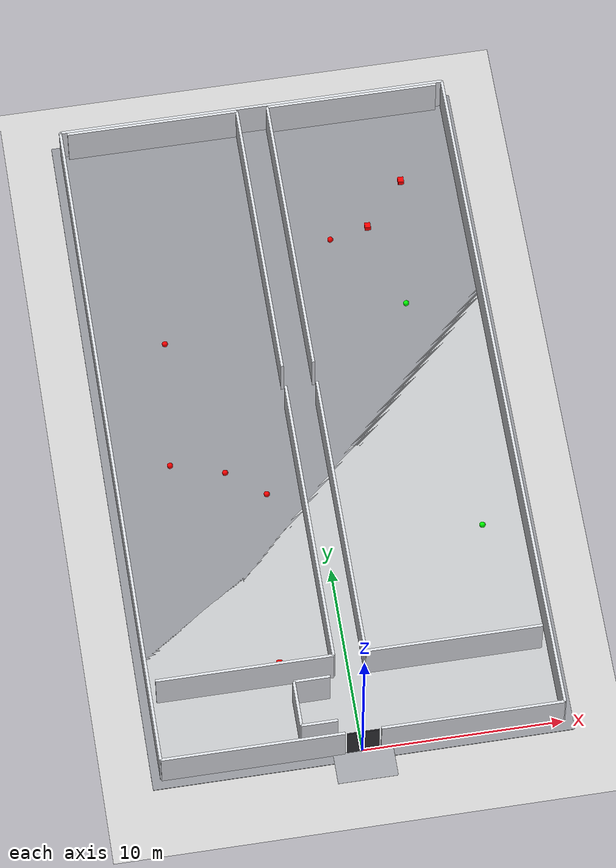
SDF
<?xml version="1.0" ?>
<sdf version="1.7">

  <world name="generated_lightweight_world">

    <include>

      <uri>model://sun</uri>

    </include>

    <include>

      <uri>model://ground_plane</uri>

    </include>

    <model name="generated_lightweight_building">

      <static>true</static>

      <pose>0 0 0 0 0 0</pose>

      <link name="lightweight_foundation">

        <pose>0.0000 18.0000 -0.0900 0.0000 0.0000 0.0000</pose>

        <gravity>false</gravity>

        <collision name="lightweight_foundation_collision">

          <geometry>

            <box>

              <size>21.0000 37.0000 0.1800</size>

            </box>

          </geometry>

        </collision>

        <visual name="lightweight_foundation_visual">

          <geometry>

            <box>

              <size>21.0000 37.0000 0.1800</size>

            </box>

          </geometry>

          <material>

            <ambient>0.56 0.57 0.59 1</ambient>

            <diffuse>0.56 0.57 0.59 1</diffuse>

          </material>

        </visual>

      </link>

      <link name="lightweight_entrance_apron">

        <pose>0.0000 -0.8000 0.0300 0.0000 0.0000 0.0000</pose>

        <gravity>false</gravity>

        <collision name="lightweight_entrance_apron_collision">

          <geometry>

            <box>

              <size>3.0000 1.6000 0.0100</size>

            </box>

          </geometry>

        </collision>

        <visual name="lightweight_entrance_apron_visual">

          <geometry>

            <box>

              <size>3.0000 1.6000 0.0100</size>

            </box>

          </geometry>

          <material>

            <ambient>0.62 0.63 0.65 1</ambient>

            <diffuse>0.62 0.63 0.65 1</diffuse>

          </material>

        </visual>

      </link>

      <link name="lightweight_floor_plate_0">

        <pose>0.0000 18.0000 -0.0900 0.0000 0.0000 0.0000</pose>

        <gravity>false</gravity>

        <collision name="lightweight_floor_plate_0_collision">

          <geometry>

            <box>

              <size>20.0000 36.0000 0.1800</size>

            </box>

          </geometry>

        </collision>

        <visual name="lightweight_floor_plate_0_visual">

          <geometry>

            <box>

              <size>20.0000 36.0000 0.1800</size>

            </box>

          </geometry>

          <material>

            <ambient>0.75 0.76 0.77 1</ambient>

            <diffuse>0.75 0.76 0.77 1</diffuse>

          </material>

        </visual>

      </link>

      <link name="lightweight_west_wall_0">

        <pose>-10.0000 18.0000 1.1750 0.0000 0.0000 0.0000</pose>

        <gravity>false</gravity>

        <collision name="lightweight_west_wall_0_collision">

          <geometry>

            <box>

              <size>0.1400 36.0000 2.3500</size>

            </box>

          </geometry>

        </collision>

        <visual name="lightweight_west_wall_0_visual">

          <geometry>

            <box>

              <size>0.1400 36.0000 2.3500</size>

            </box>

          </geometry>

          <material>

            <ambient>0.84 0.85 0.87 1</ambient>

            <diffuse>0.84 0.85 0.87 1</diffuse>

          </material>

        </visual>

      </link>

      <link name="lightweight_east_wall_0">

        <pose>10.0000 18.0000 1.1750 0.0000 0.0000 0.0000</pose>

        <gravity>false</gravity>

        <collision name="lightweight_east_wall_0_collision">

          <geometry>

            <box>

              <size>0.1400 36.0000 2.3500</size>

            </box>

          </geometry>

        </collision>

        <visual name="lightweight_east_wall_0_visual">

          <geometry>

            <box>

              <size>0.1400 36.0000 2.3500</size>

            </box>

          </geometry>

          <material>

            <ambient>0.84 0.85 0.87 1</ambient>

            <diffuse>0.84 0.85 0.87 1</diffuse>

          </material>

        </visual>

      </link>

      <link name="lightweight_north_wall_0">

        <pose>0.0000 36.0000 1.1750 0.0000 0.0000 0.0000</pose>

        <gravity>false</gravity>

        <collision name="lightweight_north_wall_0_collision">

          <geometry>

            <box>

              <size>20.0000 0.1400 2.3500</size>

            </box>

          </geometry>

        </collision>

        <visual name="lightweight_north_wall_0_visual">

          <geometry>

            <box>

              <size>20.0000 0.1400 2.3500</size>

            </box>

          </geometry>

          <material>

            <ambient>0.84 0.85 0.87 1</ambient>

            <diffuse>0.84 0.85 0.87 1</diffuse>

          </material>

        </visual>

      </link>

      <link name="lightweight_south_wall_left_0">

        <pose>-5.4500 0.0000 1.1750 0.0000 0.0000 0.0000</pose>

        <gravity>false</gravity>

        <collision name="lightweight_south_wall_left_0_collision">

          <geometry>

            <box>

              <size>9.1000 0.1400 2.3500</size>

            </box>

          </geometry>

        </collision>

        <visual name="lightweight_south_wall_left_0_visual">

          <geometry>

            <box>

              <size>9.1000 0.1400 2.3500</size>

            </box>

          </geometry>

          <material>

            <ambient>0.84 0.85 0.87 1</ambient>

            <diffuse>0.84 0.85 0.87 1</diffuse>

          </material>

        </visual>

      </link>

      <link name="lightweight_south_wall_right_0">

        <pose>5.4500 0.0000 1.1750 0.0000 0.0000 0.0000</pose>

        <gravity>false</gravity>

        <collision name="lightweight_south_wall_right_0_collision">

          <geometry>

            <box>

              <size>9.1000 0.1400 2.3500</size>

            </box>

          </geometry>

        </collision>

        <visual name="lightweight_south_wall_right_0_visual">

          <geometry>

            <box>

              <size>9.1000 0.1400 2.3500</size>

            </box>

          </geometry>

          <material>

            <ambient>0.84 0.85 0.87 1</ambient>

            <diffuse>0.84 0.85 0.87 1</diffuse>

          </material>

        </visual>

      </link>

      <link name="lightweight_light_floor_0_room_0_corridor_wall_lower">

        <pose>-0.8000 11.8175 1.2250 0.0000 0.0000 0.0000</pose>

        <gravity>false</gravity>

        <collision name="lightweight_light_floor_0_room_0_corridor_wall_lower_collision">

          <geometry>

            <box>

              <size>0.1400 15.2350 2.4500</size>

            </box>

          </geometry>

        </collision>

        <visual name="lightweight_light_floor_0_room_0_corridor_wall_lower_visual">

          <geometry>

            <box>

              <size>0.1400 15.2350 2.4500</size>

            </box>

          </geometry>

          <material>

            <ambient>0.84 0.85 0.87 1</ambient>

            <diffuse>0.84 0.85 0.87 1</diffuse>

          </material>

        </visual>

      </link>

      <link name="lightweight_light_floor_0_room_0_corridor_wall_upper">

        <pose>-0.8000 28.1825 1.2250 0.0000 0.0000 0.0000</pose>

        <gravity>false</gravity>

        <collision name="lightweight_light_floor_0_room_0_corridor_wall_upper_collision">

          <geometry>

            <box>

              <size>0.1400 15.2350 2.4500</size>

            </box>

          </geometry>

        </collision>

        <visual name="lightweight_light_floor_0_room_0_corridor_wall_upper_visual">

          <geometry>

            <box>

              <size>0.1400 15.2350 2.4500</size>

            </box>

          </geometry>

          <material>

            <ambient>0.84 0.85 0.87 1</ambient>

            <diffuse>0.84 0.85 0.87 1</diffuse>

          </material>

        </visual>

      </link>

      <link name="lightweight_light_floor_0_room_0_south_wall">

        <pose>-5.2250 4.2000 1.2250 0.0000 0.0000 0.0000</pose>

        <gravity>false</gravity>

        <collision name="lightweight_light_floor_0_room_0_south_wall_collision">

          <geometry>

            <box>

              <size>8.8500 0.1400 2.4500</size>

            </box>

          </geometry>

        </collision>

        <visual name="lightweight_light_floor_0_room_0_south_wall_visual">

          <geometry>

            <box>

              <size>8.8500 0.1400 2.4500</size>

            </box>

          </geometry>

          <material>

            <ambient>0.84 0.85 0.87 1</ambient>

            <diffuse>0.84 0.85 0.87 1</diffuse>

          </material>

        </visual>

      </link>

      <link name="lightweight_light_floor_0_room_0_north_wall">

        <pose>-5.2250 35.8000 1.2250 0.0000 0.0000 0.0000</pose>

        <gravity>false</gravity>

        <collision name="lightweight_light_floor_0_room_0_north_wall_collision">

          <geometry>

            <box>

              <size>8.8500 0.1400 2.4500</size>

            </box>

          </geometry>

        </collision>

        <visual name="lightweight_light_floor_0_room_0_north_wall_visual">

          <geometry>

            <box>

              <size>8.8500 0.1400 2.4500</size>

            </box>

          </geometry>

          <material>

            <ambient>0.84 0.85 0.87 1</ambient>

            <diffuse>0.84 0.85 0.87 1</diffuse>

          </material>

        </visual>

      </link>

      <link name="lightweight_light_floor_0_room_1_corridor_wall_lower">

        <pose>0.8000 11.8175 1.2250 0.0000 0.0000 0.0000</pose>

        <gravity>false</gravity>

        <collision name="lightweight_light_floor_0_room_1_corridor_wall_lower_collision">

          <geometry>

            <box>

              <size>0.1400 15.2350 2.4500</size>

            </box>

          </geometry>

        </collision>

        <visual name="lightweight_light_floor_0_room_1_corridor_wall_lower_visual">

          <geometry>

            <box>

              <size>0.1400 15.2350 2.4500</size>

            </box>

          </geometry>

          <material>

            <ambient>0.84 0.85 0.87 1</ambient>

            <diffuse>0.84 0.85 0.87 1</diffuse>

          </material>

        </visual>

      </link>

      <link name="lightweight_light_floor_0_room_1_corridor_wall_upper">

        <pose>0.8000 28.1825 1.2250 0.0000 0.0000 0.0000</pose>

        <gravity>false</gravity>

        <collision name="lightweight_light_floor_0_room_1_corridor_wall_upper_collision">

          <geometry>

            <box>

              <size>0.1400 15.2350 2.4500</size>

            </box>

          </geometry>

        </collision>

        <visual name="lightweight_light_floor_0_room_1_corridor_wall_upper_visual">

          <geometry>

            <box>

              <size>0.1400 15.2350 2.4500</size>

            </box>

          </geometry>

          <material>

            <ambient>0.84 0.85 0.87 1</ambient>

            <diffuse>0.84 0.85 0.87 1</diffuse>

          </material>

        </visual>

      </link>

      <link name="lightweight_light_floor_0_room_1_south_wall">

        <pose>5.2250 4.2000 1.2250 0.0000 0.0000 0.0000</pose>

        <gravity>false</gravity>

        <collision name="lightweight_light_floor_0_room_1_south_wall_collision">

          <geometry>

            <box>

              <size>8.8500 0.1400 2.4500</size>

            </box>

          </geometry>

        </collision>

        <visual name="lightweight_light_floor_0_room_1_south_wall_visual">

          <geometry>

            <box>

              <size>8.8500 0.1400 2.4500</size>

            </box>

          </geometry>

          <material>

            <ambient>0.84 0.85 0.87 1</ambient>

            <diffuse>0.84 0.85 0.87 1</diffuse>

          </material>

        </visual>

      </link>

      <link name="lightweight_light_floor_0_room_1_north_wall">

        <pose>5.2250 35.8000 1.2250 0.0000 0.0000 0.0000</pose>

        <gravity>false</gravity>

        <collision name="lightweight_light_floor_0_room_1_north_wall_collision">

          <geometry>

            <box>

              <size>8.8500 0.1400 2.4500</size>

            </box>

          </geometry>

        </collision>

        <visual name="lightweight_light_floor_0_room_1_north_wall_visual">

          <geometry>

            <box>

              <size>8.8500 0.1400 2.4500</size>

            </box>

          </geometry>

          <material>

            <ambient>0.84 0.85 0.87 1</ambient>

            <diffuse>0.84 0.85 0.87 1</diffuse>

          </material>

        </visual>

      </link>

      <link name="lightweight_stair_core_west_0">

        <pose>-2.9500 1.9000 1.2250 0.0000 0.0000 0.0000</pose>

        <gravity>false</gravity>

        <collision name="lightweight_stair_core_west_0_collision">

          <geometry>

            <box>

              <size>0.1400 2.4000 2.4500</size>

            </box>

          </geometry>

        </collision>

        <visual name="lightweight_stair_core_west_0_visual">

          <geometry>

            <box>

              <size>0.1400 2.4000 2.4500</size>

            </box>

          </geometry>

          <material>

            <ambient>0.84 0.85 0.87 1</ambient>

            <diffuse>0.84 0.85 0.87 1</diffuse>

          </material>

        </visual>

      </link>

      <link name="lightweight_stair_core_south_0">

        <pose>-2.0500 0.7000 1.2250 0.0000 0.0000 0.0000</pose>

        <gravity>false</gravity>

        <collision name="lightweight_stair_core_south_0_collision">

          <geometry>

            <box>

              <size>1.8000 0.1400 2.4500</size>

            </box>

          </geometry>

        </collision>

        <visual name="lightweight_stair_core_south_0_visual">

          <geometry>

            <box>

              <size>1.8000 0.1400 2.4500</size>

            </box>

          </geometry>

          <material>

            <ambient>0.84 0.85 0.87 1</ambient>

            <diffuse>0.84 0.85 0.87 1</diffuse>

          </material>

        </visual>

      </link>

      <link name="lightweight_stair_core_north_0">

        <pose>-2.0500 3.1000 1.2250 0.0000 0.0000 0.0000</pose>

        <gravity>false</gravity>

        <collision name="lightweight_stair_core_north_0_collision">

          <geometry>

            <box>

              <size>1.8000 0.1400 2.4500</size>

            </box>

          </geometry>

        </collision>

        <visual name="lightweight_stair_core_north_0_visual">

          <geometry>

            <box>

              <size>1.8000 0.1400 2.4500</size>

            </box>

          </geometry>

          <material>

            <ambient>0.84 0.85 0.87 1</ambient>

            <diffuse>0.84 0.85 0.87 1</diffuse>

          </material>

        </visual>

      </link>

    </model>

    <model name="dynamic_main_entrance">

      <static>false</static>

      <pose>0.0000 0.0000 1.1000 0.0000 0.0000 1.5708</pose>

      <link name="left_panel">

        <gravity>false</gravity>

        <kinematic>true</kinematic>

        <pose>0.0000 -0.4000 0.0000 0.0000 0.0000 0.0000</pose>

        <collision name="left_panel_collision">

          <geometry>

            <box>

              <size>0.0600 0.8000 2.2000</size>

            </box>

          </geometry>

        </collision>

        <visual name="left_panel_visual">

          <geometry>

            <box>

              <size>0.0600 0.8000 2.2000</size>

            </box>

          </geometry>

          <material>

            <ambient>0.18 0.18 0.20 1</ambient>

            <diffuse>0.18 0.18 0.20 1</diffuse>

          </material>

        </visual>

      </link>

      <link name="right_panel">

        <gravity>false</gravity>

        <kinematic>true</kinematic>

        <pose>0.0000 0.4000 0.0000 0.0000 0.0000 0.0000</pose>

        <collision name="right_panel_collision">

          <geometry>

            <box>

              <size>0.0600 0.8000 2.2000</size>

            </box>

          </geometry>

        </collision>

        <visual name="right_panel_visual">

          <geometry>

            <box>

              <size>0.0600 0.8000 2.2000</size>

            </box>

          </geometry>

          <material>

            <ambient>0.18 0.18 0.20 1</ambient>

            <diffuse>0.18 0.18 0.20 1</diffuse>

          </material>

        </visual>

      </link>

    </model>

    <model name="distractor_green_sphere_00">
      <static>true</static>
      <pose>6.232480 24.438948 0.150000 0.000000 0.000000 0.000000</pose>
      <link name="link">
        <collision name="collision">
          <geometry>
            <sphere>
              <radius>0.150</radius>
            </sphere>
          </geometry>
        </collision>
        <visual name="visual">
          <geometry>
            <sphere>
              <radius>0.150</radius>
            </sphere>
          </geometry>
          <material>
            <ambient>0.0 1.0 0.0 1.0</ambient>
            <diffuse>0.0 1.0 0.0 1.0</diffuse>
          </material>
        </visual>
      </link>
    </model>
    <model name="distractor_red_box_01">
      <static>true</static>
      <pose>7.145690 31.662504 0.150000 0.000000 0.000000 0.000000</pose>
      <link name="link">
        <collision name="collision">
          <geometry>
            <box>
              <size>0.300000 0.300000 0.300000</size>
            </box>
          </geometry>
        </collision>
        <visual name="visual">
          <geometry>
            <box>
              <size>0.300000 0.300000 0.300000</size>
            </box>
          </geometry>
          <material>
            <ambient>1.0 0.0 0.0 1.0</ambient>
            <diffuse>1.0 0.0 0.0 1.0</diffuse>
          </material>
        </visual>
      </link>
    </model>
    <model name="distractor_red_box_02">
      <static>true</static>
      <pose>-3.334433 5.232442 0.150000 0.000000 0.000000 0.000000</pose>
      <link name="link">
        <collision name="collision">
          <geometry>
            <box>
              <size>0.300000 0.300000 0.300000</size>
            </box>
          </geometry>
        </collision>
        <visual name="visual">
          <geometry>
            <box>
              <size>0.300000 0.300000 0.300000</size>
            </box>
          </geometry>
          <material>
            <ambient>1.0 0.0 0.0 1.0</ambient>
            <diffuse>1.0 0.0 0.0 1.0</diffuse>
          </material>
        </visual>
      </link>
    </model>
    <model name="distractor_red_box_03">
      <static>true</static>
      <pose>5.008175 29.234251 0.150000 0.000000 0.000000 0.000000</pose>
      <link name="link">
        <collision name="collision">
          <geometry>
            <box>
              <size>0.300000 0.300000 0.300000</size>
            </box>
          </geometry>
        </collision>
        <visual name="visual">
          <geometry>
            <box>
              <size>0.300000 0.300000 0.300000</size>
            </box>
          </geometry>
          <material>
            <ambient>1.0 0.0 0.0 1.0</ambient>
            <diffuse>1.0 0.0 0.0 1.0</diffuse>
          </material>
        </visual>
      </link>
    </model>
    <model name="danger_red_sphere_00">
      <static>true</static>
      <pose>2.984473 28.759726 0.150000 0.000000 0.000000 0.000000</pose>
      <link name="link">
        <collision name="collision">
          <geometry>
            <sphere>
              <radius>0.150</radius>
            </sphere>
          </geometry>
        </collision>
        <visual name="visual">
          <geometry>
            <sphere>
              <radius>0.150</radius>
            </sphere>
          </geometry>
          <material>
            <ambient>1.0 0.0 0.0 1.0</ambient>
            <diffuse>1.0 0.0 0.0 1.0</diffuse>
          </material>
        </visual>
      </link>
    </model>
    <model name="danger_red_sphere_01">
      <static>true</static>
      <pose>-7.087309 17.037407 0.150000 0.000000 0.000000 0.000000</pose>
      <link name="link">
        <collision name="collision">
          <geometry>
            <sphere>
              <radius>0.150</radius>
            </sphere>
          </geometry>
        </collision>
        <visual name="visual">
          <geometry>
            <sphere>
              <radius>0.150</radius>
            </sphere>
          </geometry>
          <material>
            <ambient>1.0 0.0 0.0 1.0</ambient>
            <diffuse>1.0 0.0 0.0 1.0</diffuse>
          </material>
        </visual>
      </link>
    </model>
    <model name="danger_red_sphere_02">
      <static>true</static>
      <pose>-6.334404 24.011266 0.150000 0.000000 0.000000 0.000000</pose>
      <link name="link">
        <collision name="collision">
          <geometry>
            <sphere>
              <radius>0.150</radius>
            </sphere>
          </geometry>
        </collision>
        <visual name="visual">
          <geometry>
            <sphere>
              <radius>0.150</radius>
            </sphere>
          </geometry>
          <material>
            <ambient>1.0 0.0 0.0 1.0</ambient>
            <diffuse>1.0 0.0 0.0 1.0</diffuse>
          </material>
        </visual>
      </link>
    </model>
    <model name="distractor_green_sphere_04">
      <static>true</static>
      <pose>7.914984 11.265568 0.150000 0.000000 0.000000 0.000000</pose>
      <link name="link">
        <collision name="collision">
          <geometry>
            <sphere>
              <radius>0.150</radius>
            </sphere>
          </geometry>
        </collision>
        <visual name="visual">
          <geometry>
            <sphere>
              <radius>0.150</radius>
            </sphere>
          </geometry>
          <material>
            <ambient>0.0 1.0 0.0 1.0</ambient>
            <diffuse>0.0 1.0 0.0 1.0</diffuse>
          </material>
        </visual>
      </link>
    </model>
    <model name="danger_red_sphere_03">
      <static>true</static>
      <pose>-2.513394 14.674554 0.150000 0.000000 0.000000 0.000000</pose>
      <link name="link">
        <collision name="collision">
          <geometry>
            <sphere>
              <radius>0.150</radius>
            </sphere>
          </geometry>
        </collision>
        <visual name="visual">
          <geometry>
            <sphere>
              <radius>0.150</radius>
            </sphere>
          </geometry>
          <material>
            <ambient>1.0 0.0 0.0 1.0</ambient>
            <diffuse>1.0 0.0 0.0 1.0</diffuse>
          </material>
        </visual>
      </link>
    </model>
    <model name="danger_red_sphere_04">
      <static>true</static>
      <pose>-4.404292 16.201872 0.150000 0.000000 0.000000 0.000000</pose>
      <link name="link">
        <collision name="collision">
          <geometry>
            <sphere>
              <radius>0.150</radius>
            </sphere>
          </geometry>
        </collision>
        <visual name="visual">
          <geometry>
            <sphere>
              <radius>0.150</radius>
            </sphere>
          </geometry>
          <material>
            <ambient>1.0 0.0 0.0 1.0</ambient>
            <diffuse>1.0 0.0 0.0 1.0</diffuse>
          </material>
        </visual>
      </link>
    </model>
  </world>

</sdf>
